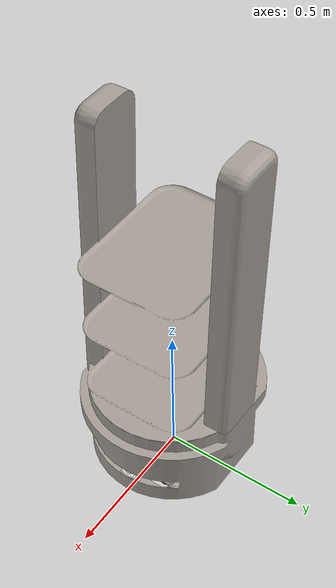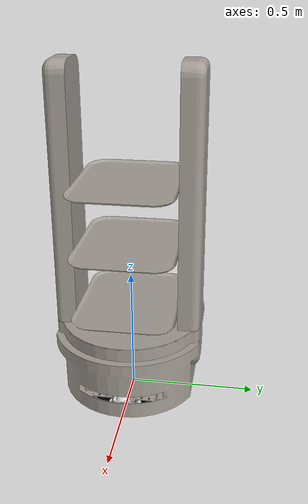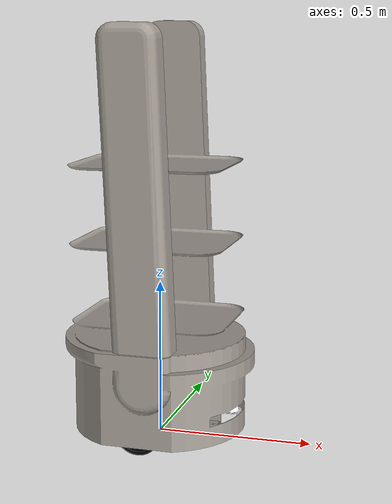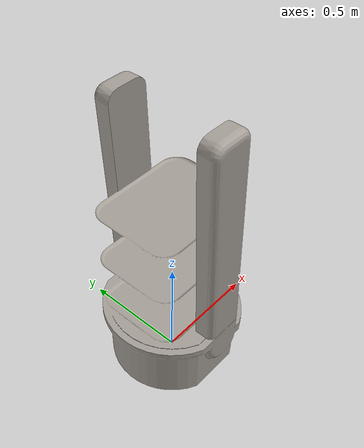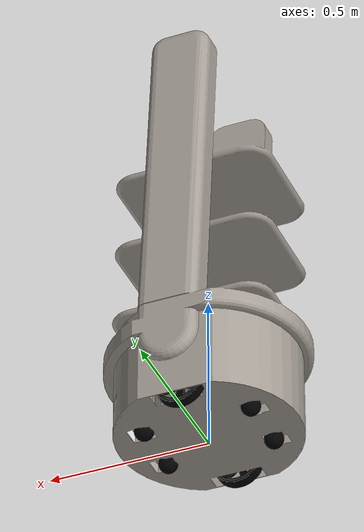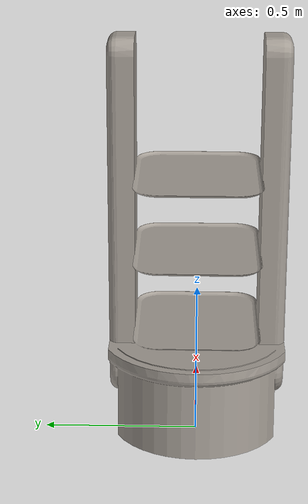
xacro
<?xml version='1.0'?>
<robot name="mobile_robot_description" xmlns:xacro="http://www.ros.org/wiki/xacro">

  <!-- ================== Includes ================== -->
  <xacro:include filename="$(find mobile_robot_description)/urdf/mobile_robot.gazebo.xacro" />
  <xacro:include filename="$(find mobile_robot_description)/urdf/materials.xacro" />

  <!--
    Robot Structure Overview:
    - Chassis (base)
    - 4 Caster links (non-driven support wheels)
    - Left & Right drive wheels
    - Lidar sensor
  -->

  <!-- ================== Base / Chassis ======================= -->
  <link name="chassis">
    <inertial>
      <mass value="30"/>
      <origin xyz="0 0 0" rpy="0 0 0"/>
      <inertia
        ixx="4.9887479320299" ixy="-0.000665021365264802" ixz="0.117153222467253"
        iyy="3.29577614857709" iyz="9.17818860502157E-07"
        izz="2.8376872224854"/>
    </inertial>

    <!-- Chassis Visual -->
    <visual>
      <origin xyz="0 0 0" rpy="0 0 0"/>
      <geometry><mesh filename="file://$(find mobile_robot_description)/meshes/chassis.STL"/></geometry>
      <material name="grayish-brown"></material>
    </visual>

    <!-- Chassis Collision -->
    <collision>
      <origin xyz="0 0 0" rpy="0 0 0"/>
      <geometry><mesh filename="file://$(find mobile_robot_description)/meshes/chassis.STL"/></geometry>
    </collision>
  </link>

  <!-- =============== Casters (Support Spheres) =============== -->

  <!-- Caster Template -->
  <xacro:macro name="caster" params="name x y z">
    <link name="${name}_link">
      <inertial>
        <mass value="0.5"/>
        <origin xyz="0 0 0"/>
        <inertia ixx="0.00018" ixy="0" ixz="0"
                 iyy="0.00018" iyz="0"
                 izz="0.00018"/>
      </inertial>
      <visual>
        <origin xyz="0 0 0" rpy="0 0 0"/>
        <geometry><sphere radius="0.03"/></geometry>
        <material name="black"></material>
      </visual>
      <collision>
        <origin xyz="0 0 0" rpy="0 0 0"/>
        <geometry><sphere radius="0.03"/></geometry>
        <surface>
          <friction>
            <ode>
              <mu>0.5</mu>
              <mu2>0.5</mu2>
              <slip1>0.01</slip1>
              <slip2>0.01</slip2>
            </ode>
          </friction>
        </surface>
      </collision>
    </link>

    <joint name="${name}_joint" type="continuous">
      <parent link="chassis"/>
      <child link="${name}_link"/>
      <origin xyz="${x} ${y} ${z}" rpy="0 0 0"/>
      <axis xyz="0 0 1"/>
    </joint>
  </xacro:macro>

  <!-- Instantiate 4 Casters -->
  <xacro:caster name="caster_front_left"  x="-0.165" y="0.09"  z="0.031"/>
  <xacro:caster name="caster_front_right" x="0.165"  y="0.09"  z="0.031"/>
  <xacro:caster name="caster_rear_left"   x="-0.165" y="-0.09" z="0.031"/>
  <xacro:caster name="caster_rear_right"  x="0.165"  y="-0.09" z="0.031"/>

  <!-- ======================== Wheels ========================= -->

  <!-- Left Wheel -->
  <link name="left_wheel_link">
    <inertial>
      <mass value="0.238"/>
      <origin xyz="0 0 0"/>
      <inertia ixx="0.00043" ixy="0" ixz="0"
               iyy="0.00081" iyz="0" izz="0.00043"/>
    </inertial>
    <visual>
      <origin xyz="0 0 0"/>
      <geometry><mesh filename="file://$(find mobile_robot_description)/meshes/left_wheel_link.STL"/></geometry>
      <material name="black"></material>
    </visual>
    <collision>
      <origin xyz="0 0 0"/>
      <geometry><mesh filename="file://$(find mobile_robot_description)/meshes/left_wheel_link.STL"/></geometry>
    </collision>
  </link>

  <!-- Left Wheel Joint -->
  <joint name="left_wheel_joint" type="continuous">
    <origin xyz="0 0.241 0.074" rpy="0 0 0"/>
    <parent link="chassis"/>
    <child link="left_wheel_link"/>
    <axis xyz="0 1 0"/>
    <limit effort="20000" velocity="2.5"/>
    <dynamics damping="0.1" friction="1.0"/>
  </joint>

  <!-- Right Wheel -->
  <link name="right_wheel_link">
    <inertial>
      <mass value="0.238"/>
      <origin xyz="0 0 0"/>
      <inertia ixx="0.00043" ixy="0" ixz="0"
               iyy="0.00081" iyz="0" izz="0.00043"/>
    </inertial>
    <visual>
      <origin xyz="0 0 0"/>
      <geometry><mesh filename="file://$(find mobile_robot_description)/meshes/right_wheel_link.STL"/></geometry>
      <material name="black"></material>
    </visual>
    <collision>
      <origin xyz="0 0 0"/>
      <geometry><mesh filename="file://$(find mobile_robot_description)/meshes/right_wheel_link.STL"/></geometry>
    </collision>
  </link>

  <!-- Right Wheel Joint -->
  <joint name="right_wheel_joint" type="continuous">
    <origin xyz="0 -0.241 0.074" rpy="0 0 0"/>
    <parent link="chassis"/>
    <child link="right_wheel_link"/>
    <axis xyz="0 1 0"/>
    <limit effort="20000" velocity="2.5"/>
    <dynamics damping="0.1" friction="1.0"/>
  </joint>

  <!-- =================== IMU Sensor ======================== -->
  <link name="imu_link"/>

  <joint name="imu_joint" type="fixed">
    <parent link="chassis"/>
    <child link="imu_link"/>
    <origin xyz="0 0 0.3" rpy="0 0 0"/>
  </joint>

  <!-- =================== Lidar Sensor ======================== -->
  <link name="lidar_link">
    <inertial>
      <mass value="0"/>
      <origin xyz="0 0 0"/>
      <inertia ixx="0" ixy="0" ixz="0" iyy="0" iyz="0" izz="0"/>
    </inertial>
    <visual>
      <origin xyz="0 0 0"/>
      <geometry><mesh filename="file://$(find mobile_robot_description)/meshes/lidar.STL"/></geometry>
      <material name="white"></material>
    </visual>
    <collision>
      <origin xyz="0 0 0"/>
      <geometry><mesh filename="file://$(find mobile_robot_description)/meshes/lidar.STL"/></geometry>
    </collision>
  </link>

  <!-- Lidar Joint -->
  <joint name="lidar_joint" type="fixed">
    <origin xyz="0.265 0 0.089" rpy="0 0 0"/>
    <parent link="chassis"/>
    <child link="lidar_link"/>
    <axis xyz="0 0 0"/>
  </joint>
  <!-- ================== End Lidar ================== -->
</robot>

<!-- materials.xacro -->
<robot>

  <material name="black">
    <color rgba="0.0 0.0 0.0 1.0"/>
  </material>

  <material name="blue">
    <color rgba="0.0 0.0 0.8 1.0"/>
  </material>

  <material name="green">
    <color rgba="0.0 0.8 0.0 1.0"/>
  </material>

  <material name="grey">
    <color rgba="0.2 0.2 0.2 1.0"/>
  </material>

  <material name="grayish-brown">
    <color rgba="0.647 0.620 0.588 1"/>
  </material>

  <material name="orange">
    <color rgba="${255/255} ${108/255} ${10/255} 1.0"/>
  </material>

  <material name="brown">
    <color rgba="${222/255} ${207/255} ${195/255} 1.0"/>
  </material>

  <material name="red">
    <color rgba="0.8 0.0 0.0 1.0"/>
  </material>

  <material name="white">
    <color rgba="1.0 1.0 1.0 1.0"/>
  </material>

</robot>
